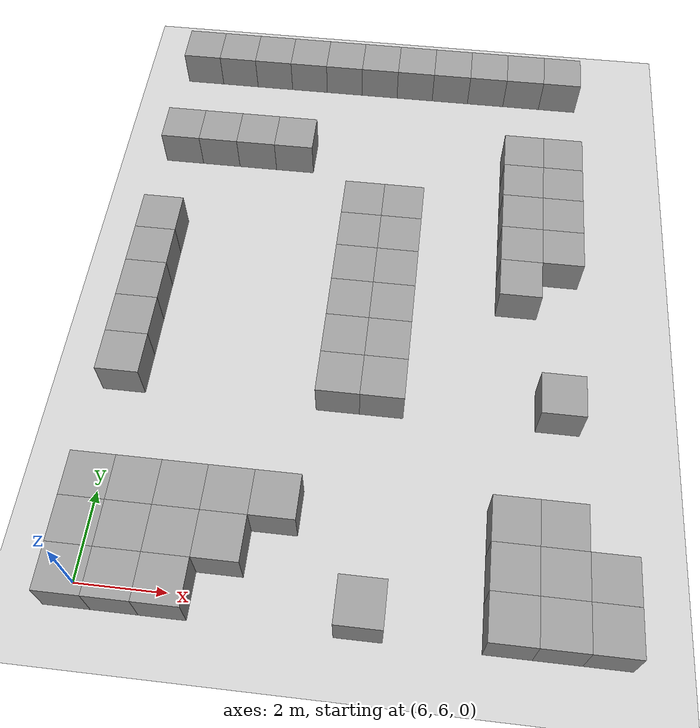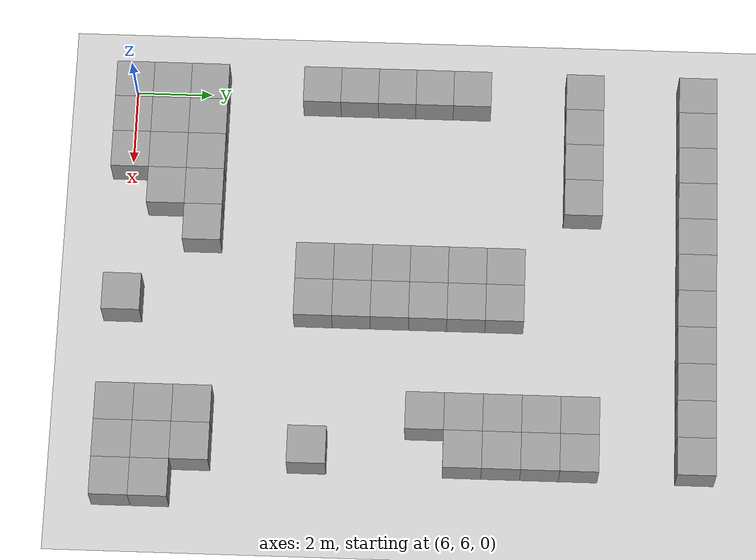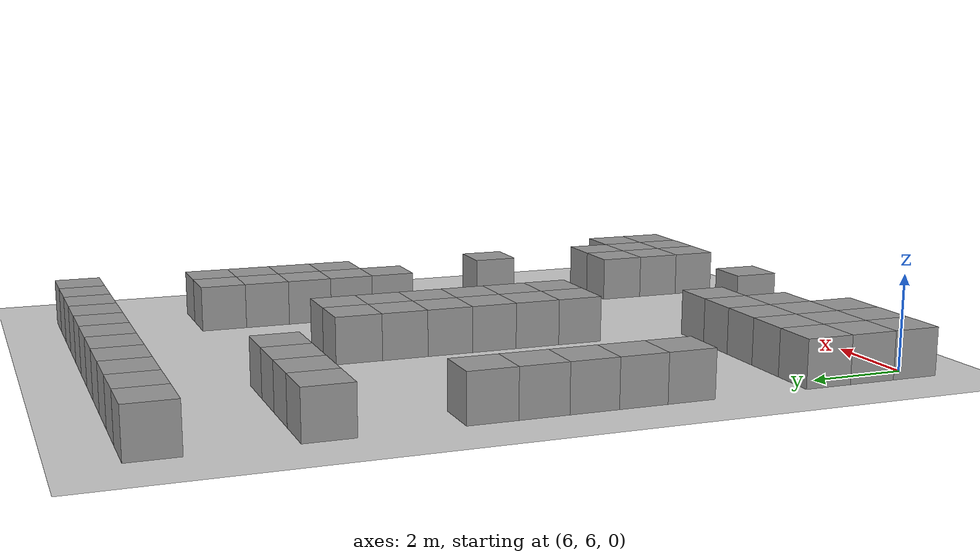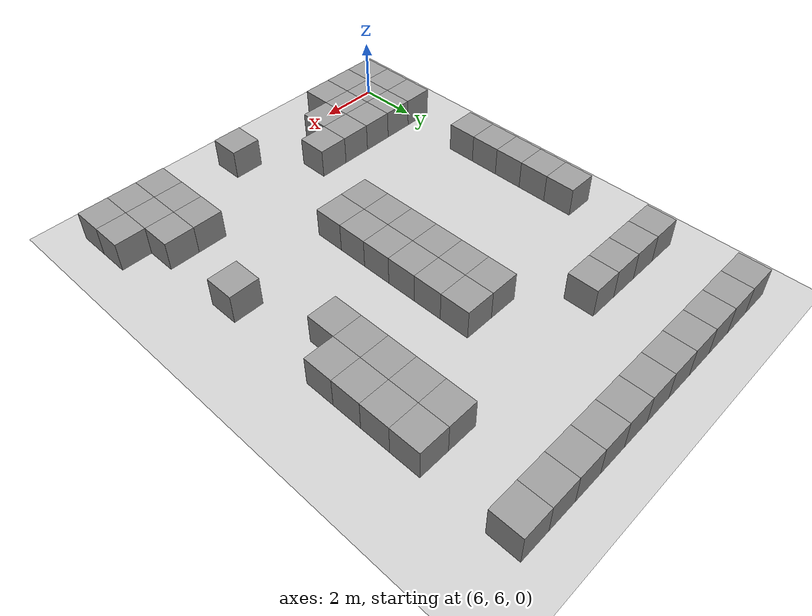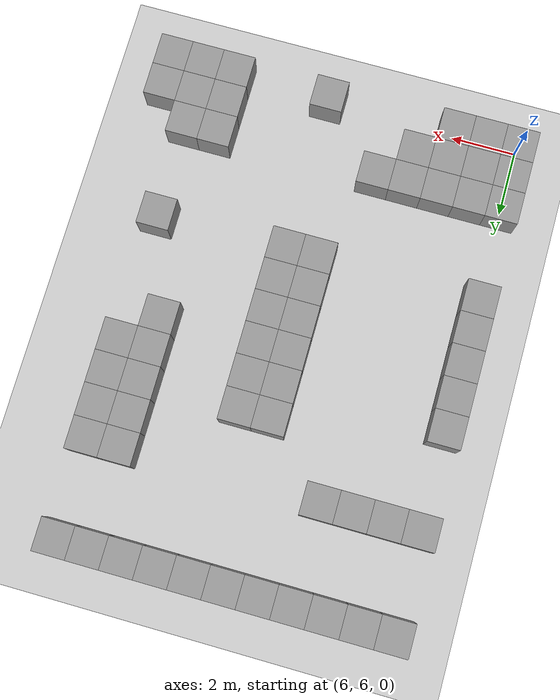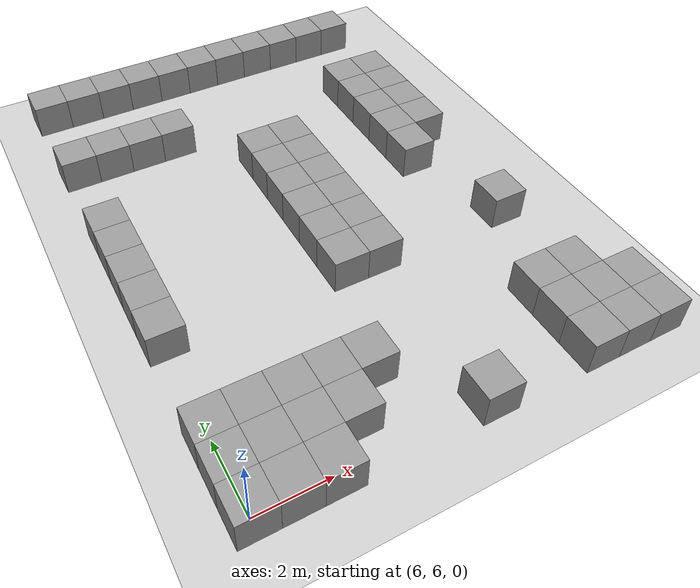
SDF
<sdf version="1.4">
 <world name="default">
  <model name="ground_plane">
   <static>1</static>
   <link name="link">
    <collision name="collision">
     <geometry><plane><normal>0 0 1</normal><size>100 100</size></plane></geometry>
     <surface><friction><ode><mu>100</mu><mu2>50</mu2></ode></friction></surface>
    </collision>
    <visual name="visual">
     <cast_shadows>0</cast_shadows>
     <geometry><plane><normal>0 0 1</normal><size>100 100</size></plane></geometry>
     <material>
      <script><uri>file://media/materials/scripts/gazebo.material</uri><name>Gazebo/Grey</name></script>
     </material>
    </visual>
    <velocity_decay><linear>0</linear><angular>0</angular></velocity_decay>
   </link>
  </model>
  <model name="unit_box_109">
   <pose>6 20.9999 0.5 0 -0 3e-06</pose>
   <static>1</static>
   <link name="link">
    <inertial>
     <mass>1</mass>
     <inertia><ixx>1</ixx><ixy>0</ixy><ixz>0</ixz><iyy>1</iyy><iyz>0</iyz><izz>1</izz></inertia>
    </inertial>
    <collision name="collision"><geometry><box><size>1 1 1</size></box></geometry></collision>
    <visual name="visual">
     <geometry><box><size>1 1 1</size></box></geometry>
     <material>
      <script><uri>file://media/materials/scripts/gazebo.material</uri><name>Gazebo/Grey</name></script>
     </material>
    </visual>
    <velocity_decay><linear>0</linear><angular>0</angular></velocity_decay>
   </link>
   <static>1</static>
  </model>
  <model name="unit_box_110">
   <pose>7 21 0.5 0 -0 4e-06</pose>
   <static>1</static>
   <link name="link">
    <inertial>
     <mass>1</mass>
     <inertia><ixx>1</ixx><ixy>0</ixy><ixz>0</ixz><iyy>1</iyy><iyz>0</iyz><izz>1</izz></inertia>
    </inertial>
    <collision name="collision"><geometry><box><size>1 1 1</size></box></geometry></collision>
    <visual name="visual">
     <geometry><box><size>1 1 1</size></box></geometry>
     <material>
      <script><uri>file://media/materials/scripts/gazebo.material</uri><name>Gazebo/Grey</name></script>
     </material>
    </visual>
    <velocity_decay><linear>0</linear><angular>0</angular></velocity_decay>
   </link>
   <static>1</static>
  </model>
  <model name="unit_box_111">
   <pose>8 21 0.5 0 -0 3e-06</pose>
   <static>1</static>
   <link name="link">
    <inertial>
     <mass>1</mass>
     <inertia><ixx>1</ixx><ixy>0</ixy><ixz>0</ixz><iyy>1</iyy><iyz>0</iyz><izz>1</izz></inertia>
    </inertial>
    <collision name="collision"><geometry><box><size>1 1 1</size></box></geometry></collision>
    <visual name="visual">
     <geometry><box><size>1 1 1</size></box></geometry>
     <material>
      <script><uri>file://media/materials/scripts/gazebo.material</uri><name>Gazebo/Grey</name></script>
     </material>
    </visual>
    <velocity_decay><linear>0</linear><angular>0</angular></velocity_decay>
   </link>
   <static>1</static>
  </model>
  <model name="unit_box_112">
   <pose>9 21 0.5 0 -0 3e-06</pose>
   <static>1</static>
   <link name="link">
    <inertial>
     <mass>1</mass>
     <inertia><ixx>1</ixx><ixy>0</ixy><ixz>0</ixz><iyy>1</iyy><iyz>0</iyz><izz>1</izz></inertia>
    </inertial>
    <collision name="collision"><geometry><box><size>1 1 1</size></box></geometry></collision>
    <visual name="visual">
     <geometry><box><size>1 1 1</size></box></geometry>
     <material>
      <script><uri>file://media/materials/scripts/gazebo.material</uri><name>Gazebo/Grey</name></script>
     </material>
    </visual>
    <velocity_decay><linear>0</linear><angular>0</angular></velocity_decay>
   </link>
   <static>1</static>
  </model>
  <model name="unit_box_113">
   <pose>10 21 0.5 0 -0 1e-06</pose>
   <static>1</static>
   <link name="link">
    <inertial>
     <mass>1</mass>
     <inertia><ixx>1</ixx><ixy>0</ixy><ixz>0</ixz><iyy>1</iyy><iyz>0</iyz><izz>1</izz></inertia>
    </inertial>
    <collision name="collision"><geometry><box><size>1 1 1</size></box></geometry></collision>
    <visual name="visual">
     <geometry><box><size>1 1 1</size></box></geometry>
     <material>
      <script><uri>file://media/materials/scripts/gazebo.material</uri><name>Gazebo/Grey</name></script>
     </material>
    </visual>
    <velocity_decay><linear>0</linear><angular>0</angular></velocity_decay>
   </link>
   <static>1</static>
  </model>
  <model name="unit_box_114">
   <pose>11 21 0.5 0 -0 1e-06</pose>
   <static>1</static>
   <link name="link">
    <inertial>
     <mass>1</mass>
     <inertia><ixx>1</ixx><ixy>0</ixy><ixz>0</ixz><iyy>1</iyy><iyz>0</iyz><izz>1</izz></inertia>
    </inertial>
    <collision name="collision"><geometry><box><size>1 1 1</size></box></geometry></collision>
    <visual name="visual">
     <geometry><box><size>1 1 1</size></box></geometry>
     <material>
      <script><uri>file://media/materials/scripts/gazebo.material</uri><name>Gazebo/Grey</name></script>
     </material>
    </visual>
    <velocity_decay><linear>0</linear><angular>0</angular></velocity_decay>
   </link>
   <static>1</static>
  </model>
  <model name="unit_box_115">
   <pose>12 21 0.5 0 0 -2e-06</pose>
   <static>1</static>
   <link name="link">
    <inertial>
     <mass>1</mass>
     <inertia><ixx>1</ixx><ixy>0</ixy><ixz>0</ixz><iyy>1</iyy><iyz>0</iyz><izz>1</izz></inertia>
    </inertial>
    <collision name="collision"><geometry><box><size>1 1 1</size></box></geometry></collision>
    <visual name="visual">
     <geometry><box><size>1 1 1</size></box></geometry>
     <material>
      <script><uri>file://media/materials/scripts/gazebo.material</uri><name>Gazebo/Grey</name></script>
     </material>
    </visual>
    <velocity_decay><linear>0</linear><angular>0</angular></velocity_decay>
   </link>
   <static>1</static>
  </model>
  <model name="unit_box_116">
   <pose>13 21 0.5 0 0 -2e-06</pose>
   <static>1</static>
   <link name="link">
    <inertial>
     <mass>1</mass>
     <inertia><ixx>1</ixx><ixy>0</ixy><ixz>0</ixz><iyy>1</iyy><iyz>0</iyz><izz>1</izz></inertia>
    </inertial>
    <collision name="collision"><geometry><box><size>1 1 1</size></box></geometry></collision>
    <visual name="visual">
     <geometry><box><size>1 1 1</size></box></geometry>
     <material>
      <script><uri>file://media/materials/scripts/gazebo.material</uri><name>Gazebo/Grey</name></script>
     </material>
    </visual>
    <velocity_decay><linear>0</linear><angular>0</angular></velocity_decay>
   </link>
   <static>1</static>
  </model>
  <model name="unit_box_121">
   <pose>14 21 0.5 0 0 -2e-06</pose>
   <static>1</static>
   <link name="link">
    <inertial>
     <mass>1</mass>
     <inertia><ixx>1</ixx><ixy>0</ixy><ixz>0</ixz><iyy>1</iyy><iyz>0</iyz><izz>1</izz></inertia>
    </inertial>
    <collision name="collision"><geometry><box><size>1 1 1</size></box></geometry></collision>
    <visual name="visual">
     <geometry><box><size>1 1 1</size></box></geometry>
     <material>
      <script><uri>file://media/materials/scripts/gazebo.material</uri><name>Gazebo/Grey</name></script>
     </material>
    </visual>
    <velocity_decay><linear>0</linear><angular>0</angular></velocity_decay>
   </link>
   <static>1</static>
  </model>
  <model name="unit_box_134">
   <pose>15 21 0.5 0 -0 1e-06</pose>
   <static>1</static>
   <link name="link">
    <inertial>
     <mass>1</mass>
     <inertia><ixx>1</ixx><ixy>0</ixy><ixz>0</ixz><iyy>1</iyy><iyz>0</iyz><izz>1</izz></inertia>
    </inertial>
    <collision name="collision"><geometry><box><size>1 1 1</size></box></geometry></collision>
    <visual name="visual">
     <geometry><box><size>1 1 1</size></box></geometry>
     <material>
      <script><uri>file://media/materials/scripts/gazebo.material</uri><name>Gazebo/Grey</name></script>
     </material>
    </visual>
    <velocity_decay><linear>0</linear><angular>0</angular></velocity_decay>
   </link>
   <static>1</static>
  </model>
  <model name="unit_box_135">
   <pose>16 21 0.5 0 -0 1e-06</pose>
   <static>1</static>
   <link name="link">
    <inertial>
     <mass>1</mass>
     <inertia><ixx>1</ixx><ixy>0</ixy><ixz>0</ixz><iyy>1</iyy><iyz>0</iyz><izz>1</izz></inertia>
    </inertial>
    <collision name="collision"><geometry><box><size>1 1 1</size></box></geometry></collision>
    <visual name="visual">
     <geometry><box><size>1 1 1</size></box></geometry>
     <material>
      <script><uri>file://media/materials/scripts/gazebo.material</uri><name>Gazebo/Grey</name></script>
     </material>
    </visual>
    <velocity_decay><linear>0</linear><angular>0</angular></velocity_decay>
   </link>
   <static>1</static>
  </model>
  <model name="unit_box_217_0">
   <pose>8.00001 6.00001 0.5 0 -0 6e-06</pose>
   <link name="link">
    <inertial>
     <mass>1</mass>
     <inertia><ixx>1</ixx><ixy>0</ixy><ixz>0</ixz><iyy>1</iyy><iyz>0</iyz><izz>1</izz></inertia>
    </inertial>
    <collision name="collision"><geometry><box><size>1 1 1</size></box></geometry></collision>
    <visual name="visual">
     <geometry><box><size>1 1 1</size></box></geometry>
     <material>
      <script><uri>file://media/materials/scripts/gazebo.material</uri><name>Gazebo/Grey</name></script>
     </material>
    </visual>
    <velocity_decay><linear>0</linear><angular>0</angular></velocity_decay>
   </link>
   <static>1</static>
  </model>
  <model name="unit_box_218_0">
   <pose>7 6 0.5 0 -0 3e-06</pose>
   <link name="link">
    <inertial>
     <mass>1</mass>
     <inertia><ixx>1</ixx><ixy>0</ixy><ixz>0</ixz><iyy>1</iyy><iyz>0</iyz><izz>1</izz></inertia>
    </inertial>
    <collision name="collision"><geometry><box><size>1 1 1</size></box></geometry></collision>
    <visual name="visual">
     <geometry><box><size>1 1 1</size></box></geometry>
     <material>
      <script><uri>file://media/materials/scripts/gazebo.material</uri><name>Gazebo/Grey</name></script>
     </material>
    </visual>
    <velocity_decay><linear>0</linear><angular>0</angular></velocity_decay>
   </link>
   <static>1</static>
  </model>
  <model name="unit_box_219_0">
   <pose>6 6 0.5 0 -0 1e-06</pose>
   <link name="link">
    <inertial>
     <mass>1</mass>
     <inertia><ixx>1</ixx><ixy>0</ixy><ixz>0</ixz><iyy>1</iyy><iyz>0</iyz><izz>1</izz></inertia>
    </inertial>
    <collision name="collision"><geometry><box><size>1 1 1</size></box></geometry></collision>
    <visual name="visual">
     <geometry><box><size>1 1 1</size></box></geometry>
     <material>
      <script><uri>file://media/materials/scripts/gazebo.material</uri><name>Gazebo/Grey</name></script>
     </material>
    </visual>
    <velocity_decay><linear>0</linear><angular>0</angular></velocity_decay>
   </link>
   <static>1</static>
  </model>
  <model name="unit_box_222_0">
   <pose>6 7 0.5 0 -0 1e-06</pose>
   <link name="link">
    <inertial>
     <mass>1</mass>
     <inertia><ixx>1</ixx><ixy>0</ixy><ixz>0</ixz><iyy>1</iyy><iyz>0</iyz><izz>1</izz></inertia>
    </inertial>
    <collision name="collision"><geometry><box><size>1 1 1</size></box></geometry></collision>
    <visual name="visual">
     <geometry><box><size>1 1 1</size></box></geometry>
     <material>
      <script><uri>file://media/materials/scripts/gazebo.material</uri><name>Gazebo/Grey</name></script>
     </material>
    </visual>
    <velocity_decay><linear>0</linear><angular>0</angular></velocity_decay>
   </link>
   <static>1</static>
  </model>
  <model name="unit_box_223_0">
   <pose>7 7 0.5 0 -0 2e-06</pose>
   <link name="link">
    <inertial>
     <mass>1</mass>
     <inertia><ixx>1</ixx><ixy>0</ixy><ixz>0</ixz><iyy>1</iyy><iyz>0</iyz><izz>1</izz></inertia>
    </inertial>
    <collision name="collision"><geometry><box><size>1 1 1</size></box></geometry></collision>
    <visual name="visual">
     <geometry><box><size>1 1 1</size></box></geometry>
     <material>
      <script><uri>file://media/materials/scripts/gazebo.material</uri><name>Gazebo/Grey</name></script>
     </material>
    </visual>
    <velocity_decay><linear>0</linear><angular>0</angular></velocity_decay>
   </link>
   <static>1</static>
  </model>
  <model name="unit_box_224_0">
   <pose>8 7.00001 0.5 0 -0 2e-06</pose>
   <link name="link">
    <inertial>
     <mass>1</mass>
     <inertia><ixx>1</ixx><ixy>0</ixy><ixz>0</ixz><iyy>1</iyy><iyz>0</iyz><izz>1</izz></inertia>
    </inertial>
    <collision name="collision"><geometry><box><size>1 1 1</size></box></geometry></collision>
    <visual name="visual">
     <geometry><box><size>1 1 1</size></box></geometry>
     <material>
      <script><uri>file://media/materials/scripts/gazebo.material</uri><name>Gazebo/Grey</name></script>
     </material>
    </visual>
    <velocity_decay><linear>0</linear><angular>0</angular></velocity_decay>
   </link>
   <static>1</static>
  </model>
  <model name="unit_box_225_0">
   <pose>9.00001 7 0.5 0 -0 7e-06</pose>
   <link name="link">
    <inertial>
     <mass>1</mass>
     <inertia><ixx>1</ixx><ixy>0</ixy><ixz>0</ixz><iyy>1</iyy><iyz>0</iyz><izz>1</izz></inertia>
    </inertial>
    <collision name="collision"><geometry><box><size>1 1 1</size></box></geometry></collision>
    <visual name="visual">
     <geometry><box><size>1 1 1</size></box></geometry>
     <material>
      <script><uri>file://media/materials/scripts/gazebo.material</uri><name>Gazebo/Grey</name></script>
     </material>
    </visual>
    <velocity_decay><linear>0</linear><angular>0</angular></velocity_decay>
   </link>
   <static>1</static>
  </model>
  <model name="unit_box_228_0">
   <pose>10 8.00001 0.5 0 -0 5e-06</pose>
   <link name="link">
    <inertial>
     <mass>1</mass>
     <inertia><ixx>1</ixx><ixy>0</ixy><ixz>0</ixz><iyy>1</iyy><iyz>0</iyz><izz>1</izz></inertia>
    </inertial>
    <collision name="collision"><geometry><box><size>1 1 1</size></box></geometry></collision>
    <visual name="visual">
     <geometry><box><size>1 1 1</size></box></geometry>
     <material>
      <script><uri>file://media/materials/scripts/gazebo.material</uri><name>Gazebo/Grey</name></script>
     </material>
    </visual>
    <velocity_decay><linear>0</linear><angular>0</angular></velocity_decay>
   </link>
   <static>1</static>
  </model>
  <model name="unit_box_229_0">
   <pose>9 8 0.5 0 -0 5e-06</pose>
   <link name="link">
    <inertial>
     <mass>1</mass>
     <inertia><ixx>1</ixx><ixy>0</ixy><ixz>0</ixz><iyy>1</iyy><iyz>0</iyz><izz>1</izz></inertia>
    </inertial>
    <collision name="collision"><geometry><box><size>1 1 1</size></box></geometry></collision>
    <visual name="visual">
     <geometry><box><size>1 1 1</size></box></geometry>
     <material>
      <script><uri>file://media/materials/scripts/gazebo.material</uri><name>Gazebo/Grey</name></script>
     </material>
    </visual>
    <velocity_decay><linear>0</linear><angular>0</angular></velocity_decay>
   </link>
   <static>1</static>
  </model>
  <model name="unit_box_230_0">
   <pose>8 8.00001 0.5 0 -0 5e-06</pose>
   <link name="link">
    <inertial>
     <mass>1</mass>
     <inertia><ixx>1</ixx><ixy>0</ixy><ixz>0</ixz><iyy>1</iyy><iyz>0</iyz><izz>1</izz></inertia>
    </inertial>
    <collision name="collision"><geometry><box><size>1 1 1</size></box></geometry></collision>
    <visual name="visual">
     <geometry><box><size>1 1 1</size></box></geometry>
     <material>
      <script><uri>file://media/materials/scripts/gazebo.material</uri><name>Gazebo/Grey</name></script>
     </material>
    </visual>
    <velocity_decay><linear>0</linear><angular>0</angular></velocity_decay>
   </link>
   <static>1</static>
  </model>
  <model name="unit_box_231_0">
   <pose>7 8.00001 0.5 0 -0 5e-06</pose>
   <link name="link">
    <inertial>
     <mass>1</mass>
     <inertia><ixx>1</ixx><ixy>0</ixy><ixz>0</ixz><iyy>1</iyy><iyz>0</iyz><izz>1</izz></inertia>
    </inertial>
    <collision name="collision"><geometry><box><size>1 1 1</size></box></geometry></collision>
    <visual name="visual">
     <geometry><box><size>1 1 1</size></box></geometry>
     <material>
      <script><uri>file://media/materials/scripts/gazebo.material</uri><name>Gazebo/Grey</name></script>
     </material>
    </visual>
    <velocity_decay><linear>0</linear><angular>0</angular></velocity_decay>
   </link>
   <static>1</static>
  </model>
  <model name="unit_box_232_0">
   <pose>6 8.00001 0.5 0 -0 2e-06</pose>
   <link name="link">
    <inertial>
     <mass>1</mass>
     <inertia><ixx>1</ixx><ixy>0</ixy><ixz>0</ixz><iyy>1</iyy><iyz>0</iyz><izz>1</izz></inertia>
    </inertial>
    <collision name="collision"><geometry><box><size>1 1 1</size></box></geometry></collision>
    <visual name="visual">
     <geometry><box><size>1 1 1</size></box></geometry>
     <material>
      <script><uri>file://media/materials/scripts/gazebo.material</uri><name>Gazebo/Grey</name></script>
     </material>
    </visual>
    <velocity_decay><linear>0</linear><angular>0</angular></velocity_decay>
   </link>
   <static>1</static>
  </model>
  <model name="unit_box_236_0">
   <pose>12 6 0.5 0 -0 1e-06</pose>
   <link name="link">
    <inertial>
     <mass>1</mass>
     <inertia><ixx>1</ixx><ixy>0</ixy><ixz>0</ixz><iyy>1</iyy><iyz>0</iyz><izz>1</izz></inertia>
    </inertial>
    <collision name="collision"><geometry><box><size>1 1 1</size></box></geometry></collision>
    <visual name="visual">
     <geometry><box><size>1 1 1</size></box></geometry>
     <material>
      <script><uri>file://media/materials/scripts/gazebo.material</uri><name>Gazebo/Grey</name></script>
     </material>
    </visual>
    <velocity_decay><linear>0</linear><angular>0</angular></velocity_decay>
   </link>
   <static>1</static>
  </model>
  <model name="unit_box_290">
   <pose>15 6 0.5 0 0 -4e-06</pose>
   <link name="link">
    <inertial>
     <mass>1</mass>
     <inertia><ixx>1</ixx><ixy>0</ixy><ixz>0</ixz><iyy>1</iyy><iyz>0</iyz><izz>1</izz></inertia>
    </inertial>
    <collision name="collision"><geometry><box><size>1 1 1</size></box></geometry></collision>
    <visual name="visual">
     <geometry><box><size>1 1 1</size></box></geometry>
     <material>
      <script><uri>file://media/materials/scripts/gazebo.material</uri><name>Gazebo/Grey</name></script>
     </material>
    </visual>
    <velocity_decay><linear>0</linear><angular>0</angular></velocity_decay>
   </link>
   <static>1</static>
  </model>
  <model name="unit_box_291">
   <pose>15 7 0.5 0 0 -4e-06</pose>
   <link name="link">
    <inertial>
     <mass>1</mass>
     <inertia><ixx>1</ixx><ixy>0</ixy><ixz>0</ixz><iyy>1</iyy><iyz>0</iyz><izz>1</izz></inertia>
    </inertial>
    <collision name="collision"><geometry><box><size>1 1 1</size></box></geometry></collision>
    <visual name="visual">
     <geometry><box><size>1 1 1</size></box></geometry>
     <material>
      <script><uri>file://media/materials/scripts/gazebo.material</uri><name>Gazebo/Grey</name></script>
     </material>
    </visual>
    <velocity_decay><linear>0</linear><angular>0</angular></velocity_decay>
   </link>
   <static>1</static>
  </model>
  <model name="unit_box_292">
   <pose>15 8 0.5 0 0 -4e-06</pose>
   <link name="link">
    <inertial>
     <mass>1</mass>
     <inertia><ixx>1</ixx><ixy>0</ixy><ixz>0</ixz><iyy>1</iyy><iyz>0</iyz><izz>1</izz></inertia>
    </inertial>
    <collision name="collision"><geometry><box><size>1 1 1</size></box></geometry></collision>
    <visual name="visual">
     <geometry><box><size>1 1 1</size></box></geometry>
     <material>
      <script><uri>file://media/materials/scripts/gazebo.material</uri><name>Gazebo/Grey</name></script>
     </material>
    </visual>
    <velocity_decay><linear>0</linear><angular>0</angular></velocity_decay>
   </link>
   <static>1</static>
  </model>
  <model name="unit_box_307">
   <pose>17 6.00002 0.5 0 0 -2e-06</pose>
   <link name="link">
    <inertial>
     <mass>1</mass>
     <inertia><ixx>1</ixx><ixy>0</ixy><ixz>0</ixz><iyy>1</iyy><iyz>0</iyz><izz>1</izz></inertia>
    </inertial>
    <collision name="collision"><geometry><box><size>1 1 1</size></box></geometry></collision>
    <visual name="visual">
     <geometry><box><size>1 1 1</size></box></geometry>
     <material>
      <script><uri>file://media/materials/scripts/gazebo.material</uri><name>Gazebo/Grey</name></script>
     </material>
    </visual>
    <velocity_decay><linear>0</linear><angular>0</angular></velocity_decay>
   </link>
   <static>1</static>
  </model>
  <model name="unit_box_308">
   <pose>16 5.99999 0.5 0 0 -4e-06</pose>
   <link name="link">
    <inertial>
     <mass>1</mass>
     <inertia><ixx>1</ixx><ixy>0</ixy><ixz>0</ixz><iyy>1</iyy><iyz>0</iyz><izz>1</izz></inertia>
    </inertial>
    <collision name="collision"><geometry><box><size>1 1 1</size></box></geometry></collision>
    <visual name="visual">
     <geometry><box><size>1 1 1</size></box></geometry>
     <material>
      <script><uri>file://media/materials/scripts/gazebo.material</uri><name>Gazebo/Grey</name></script>
     </material>
    </visual>
    <velocity_decay><linear>0</linear><angular>0</angular></velocity_decay>
   </link>
   <static>1</static>
  </model>
  <model name="unit_box_309">
   <pose>16 7 0.5 0 0 -5e-06</pose>
   <link name="link">
    <inertial>
     <mass>1</mass>
     <inertia><ixx>1</ixx><ixy>0</ixy><ixz>0</ixz><iyy>1</iyy><iyz>0</iyz><izz>1</izz></inertia>
    </inertial>
    <collision name="collision"><geometry><box><size>1 1 1</size></box></geometry></collision>
    <visual name="visual">
     <geometry><box><size>1 1 1</size></box></geometry>
     <material>
      <script><uri>file://media/materials/scripts/gazebo.material</uri><name>Gazebo/Grey</name></script>
     </material>
    </visual>
    <velocity_decay><linear>0</linear><angular>0</angular></velocity_decay>
   </link>
   <static>1</static>
  </model>
  <model name="unit_box_310">
   <pose>16 8 0.5 0 0 -5e-06</pose>
   <link name="link">
    <inertial>
     <mass>1</mass>
     <inertia><ixx>1</ixx><ixy>0</ixy><ixz>0</ixz><iyy>1</iyy><iyz>0</iyz><izz>1</izz></inertia>
    </inertial>
    <collision name="collision"><geometry><box><size>1 1 1</size></box></geometry></collision>
    <visual name="visual">
     <geometry><box><size>1 1 1</size></box></geometry>
     <material>
      <script><uri>file://media/materials/scripts/gazebo.material</uri><name>Gazebo/Grey</name></script>
     </material>
    </visual>
    <velocity_decay><linear>0</linear><angular>0</angular></velocity_decay>
   </link>
   <static>1</static>
  </model>
  <model name="unit_box_319">
   <pose>6 11 0.5 0 -0 5e-06</pose>
   <link name="link">
    <inertial>
     <mass>1</mass>
     <inertia><ixx>1</ixx><ixy>0</ixy><ixz>0</ixz><iyy>1</iyy><iyz>0</iyz><izz>1</izz></inertia>
    </inertial>
    <collision name="collision"><geometry><box><size>1 1 1</size></box></geometry></collision>
    <visual name="visual">
     <geometry><box><size>1 1 1</size></box></geometry>
     <material>
      <script><uri>file://media/materials/scripts/gazebo.material</uri><name>Gazebo/Grey</name></script>
     </material>
    </visual>
    <velocity_decay><linear>0</linear><angular>0</angular></velocity_decay>
   </link>
   <static>1</static>
  </model>
  <model name="unit_box_320">
   <pose>6 12 0.5 0 -0 5e-06</pose>
   <link name="link">
    <inertial>
     <mass>1</mass>
     <inertia><ixx>1</ixx><ixy>0</ixy><ixz>0</ixz><iyy>1</iyy><iyz>0</iyz><izz>1</izz></inertia>
    </inertial>
    <collision name="collision"><geometry><box><size>1 1 1</size></box></geometry></collision>
    <visual name="visual">
     <geometry><box><size>1 1 1</size></box></geometry>
     <material>
      <script><uri>file://media/materials/scripts/gazebo.material</uri><name>Gazebo/Grey</name></script>
     </material>
    </visual>
    <velocity_decay><linear>0</linear><angular>0</angular></velocity_decay>
   </link>
   <static>1</static>
  </model>
  <model name="unit_box_321">
   <pose>6 13 0.5 0 -0 2e-06</pose>
   <link name="link">
    <inertial>
     <mass>1</mass>
     <inertia><ixx>1</ixx><ixy>0</ixy><ixz>0</ixz><iyy>1</iyy><iyz>0</iyz><izz>1</izz></inertia>
    </inertial>
    <collision name="collision"><geometry><box><size>1 1 1</size></box></geometry></collision>
    <visual name="visual">
     <geometry><box><size>1 1 1</size></box></geometry>
     <material>
      <script><uri>file://media/materials/scripts/gazebo.material</uri><name>Gazebo/Grey</name></script>
     </material>
    </visual>
    <velocity_decay><linear>0</linear><angular>0</angular></velocity_decay>
   </link>
   <static>1</static>
  </model>
  <model name="unit_box_322">
   <pose>6.00001 14 0.5 0 -0 3e-06</pose>
   <link name="link">
    <inertial>
     <mass>1</mass>
     <inertia><ixx>1</ixx><ixy>0</ixy><ixz>0</ixz><iyy>1</iyy><iyz>0</iyz><izz>1</izz></inertia>
    </inertial>
    <collision name="collision"><geometry><box><size>1 1 1</size></box></geometry></collision>
    <visual name="visual">
     <geometry><box><size>1 1 1</size></box></geometry>
     <material>
      <script><uri>file://media/materials/scripts/gazebo.material</uri><name>Gazebo/Grey</name></script>
     </material>
    </visual>
    <velocity_decay><linear>0</linear><angular>0</angular></velocity_decay>
   </link>
   <static>1</static>
  </model>
  <model name="unit_box_328">
   <pose>6 15 0.5 0 -0 3e-06</pose>
   <link name="link">
    <inertial>
     <mass>1</mass>
     <inertia><ixx>1</ixx><ixy>0</ixy><ixz>0</ixz><iyy>1</iyy><iyz>0</iyz><izz>1</izz></inertia>
    </inertial>
    <collision name="collision"><geometry><box><size>1 1 1</size></box></geometry></collision>
    <visual name="visual">
     <geometry><box><size>1 1 1</size></box></geometry>
     <material>
      <script><uri>file://media/materials/scripts/gazebo.material</uri><name>Gazebo/Grey</name></script>
     </material>
    </visual>
    <velocity_decay><linear>0</linear><angular>0</angular></velocity_decay>
   </link>
   <static>1</static>
  </model>
  <model name="unit_box_330">
   <pose>6 17.9999 0.5 0 0 -1e-06</pose>
   <link name="link">
    <inertial>
     <mass>1</mass>
     <inertia><ixx>1</ixx><ixy>0</ixy><ixz>0</ixz><iyy>1</iyy><iyz>0</iyz><izz>1</izz></inertia>
    </inertial>
    <collision name="collision"><geometry><box><size>1 1 1</size></box></geometry></collision>
    <visual name="visual">
     <geometry><box><size>1 1 1</size></box></geometry>
     <material>
      <script><uri>file://media/materials/scripts/gazebo.material</uri><name>Gazebo/Grey</name></script>
     </material>
    </visual>
    <velocity_decay><linear>0</linear><angular>0</angular></velocity_decay>
   </link>
   <static>1</static>
  </model>
  <model name="unit_box_331">
   <pose>7 18 0.5 0 -0 0</pose>
   <link name="link">
    <inertial>
     <mass>1</mass>
     <inertia><ixx>1</ixx><ixy>0</ixy><ixz>0</ixz><iyy>1</iyy><iyz>0</iyz><izz>1</izz></inertia>
    </inertial>
    <collision name="collision"><geometry><box><size>1 1 1</size></box></geometry></collision>
    <visual name="visual">
     <geometry><box><size>1 1 1</size></box></geometry>
     <material>
      <script><uri>file://media/materials/scripts/gazebo.material</uri><name>Gazebo/Grey</name></script>
     </material>
    </visual>
    <velocity_decay><linear>0</linear><angular>0</angular></velocity_decay>
   </link>
   <static>1</static>
  </model>
  <model name="unit_box_332">
   <pose>8 18 0.5 0 0 -4e-06</pose>
   <link name="link">
    <inertial>
     <mass>1</mass>
     <inertia><ixx>1</ixx><ixy>0</ixy><ixz>0</ixz><iyy>1</iyy><iyz>0</iyz><izz>1</izz></inertia>
    </inertial>
    <collision name="collision"><geometry><box><size>1 1 1</size></box></geometry></collision>
    <visual name="visual">
     <geometry><box><size>1 1 1</size></box></geometry>
     <material>
      <script><uri>file://media/materials/scripts/gazebo.material</uri><name>Gazebo/Grey</name></script>
     </material>
    </visual>
    <velocity_decay><linear>0</linear><angular>0</angular></velocity_decay>
   </link>
   <static>1</static>
  </model>
  <model name="unit_box_333">
   <pose>9.00001 18 0.5 0 -0 1e-06</pose>
   <link name="link">
    <inertial>
     <mass>1</mass>
     <inertia><ixx>1</ixx><ixy>0</ixy><ixz>0</ixz><iyy>1</iyy><iyz>0</iyz><izz>1</izz></inertia>
    </inertial>
    <collision name="collision"><geometry><box><size>1 1 1</size></box></geometry></collision>
    <visual name="visual">
     <geometry><box><size>1 1 1</size></box></geometry>
     <material>
      <script><uri>file://media/materials/scripts/gazebo.material</uri><name>Gazebo/Grey</name></script>
     </material>
    </visual>
    <velocity_decay><linear>0</linear><angular>0</angular></velocity_decay>
   </link>
   <static>1</static>
  </model>
  <model name="unit_box_337">
   <pose>11 16 0.5 0 0 -1e-06</pose>
   <link name="link">
    <inertial>
     <mass>1</mass>
     <inertia><ixx>1</ixx><ixy>0</ixy><ixz>0</ixz><iyy>1</iyy><iyz>0</iyz><izz>1</izz></inertia>
    </inertial>
    <collision name="collision"><geometry><box><size>1 1 1</size></box></geometry></collision>
    <visual name="visual">
     <geometry><box><size>1 1 1</size></box></geometry>
     <material>
      <script><uri>file://media/materials/scripts/gazebo.material</uri><name>Gazebo/Grey</name></script>
     </material>
    </visual>
    <velocity_decay><linear>0</linear><angular>0</angular></velocity_decay>
   </link>
   <static>1</static>
  </model>
  <model name="unit_box_338">
   <pose>11 15 0.5 0 0 -2e-06</pose>
   <link name="link">
    <inertial>
     <mass>1</mass>
     <inertia><ixx>1</ixx><ixy>0</ixy><ixz>0</ixz><iyy>1</iyy><iyz>0</iyz><izz>1</izz></inertia>
    </inertial>
    <collision name="collision"><geometry><box><size>1 1 1</size></box></geometry></collision>
    <visual name="visual">
     <geometry><box><size>1 1 1</size></box></geometry>
     <material>
      <script><uri>file://media/materials/scripts/gazebo.material</uri><name>Gazebo/Grey</name></script>
     </material>
    </visual>
    <velocity_decay><linear>0</linear><angular>0</angular></velocity_decay>
   </link>
   <static>1</static>
  </model>
  <model name="unit_box_339">
   <pose>11 14 0.5 0 0 -2e-06</pose>
   <link name="link">
    <inertial>
     <mass>1</mass>
     <inertia><ixx>1</ixx><ixy>0</ixy><ixz>0</ixz><iyy>1</iyy><iyz>0</iyz><izz>1</izz></inertia>
    </inertial>
    <collision name="collision"><geometry><box><size>1 1 1</size></box></geometry></collision>
    <visual name="visual">
     <geometry><box><size>1 1 1</size></box></geometry>
     <material>
      <script><uri>file://media/materials/scripts/gazebo.material</uri><name>Gazebo/Grey</name></script>
     </material>
    </visual>
    <velocity_decay><linear>0</linear><angular>0</angular></velocity_decay>
   </link>
   <static>1</static>
  </model>
  <model name="unit_box_340">
   <pose>11 13 0.5 0 -0 0</pose>
   <link name="link">
    <inertial>
     <mass>1</mass>
     <inertia><ixx>1</ixx><ixy>0</ixy><ixz>0</ixz><iyy>1</iyy><iyz>0</iyz><izz>1</izz></inertia>
    </inertial>
    <collision name="collision"><geometry><box><size>1 1 1</size></box></geometry></collision>
    <visual name="visual">
     <geometry><box><size>1 1 1</size></box></geometry>
     <material>
      <script><uri>file://media/materials/scripts/gazebo.material</uri><name>Gazebo/Grey</name></script>
     </material>
    </visual>
    <velocity_decay><linear>0</linear><angular>0</angular></velocity_decay>
   </link>
   <static>1</static>
  </model>
  <model name="unit_box_341">
   <pose>11 12 0.5 0 0 -1e-06</pose>
   <link name="link">
    <inertial>
     <mass>1</mass>
     <inertia><ixx>1</ixx><ixy>0</ixy><ixz>0</ixz><iyy>1</iyy><iyz>0</iyz><izz>1</izz></inertia>
    </inertial>
    <collision name="collision"><geometry><box><size>1 1 1</size></box></geometry></collision>
    <visual name="visual">
     <geometry><box><size>1 1 1</size></box></geometry>
     <material>
      <script><uri>file://media/materials/scripts/gazebo.material</uri><name>Gazebo/Grey</name></script>
     </material>
    </visual>
    <velocity_decay><linear>0</linear><angular>0</angular></velocity_decay>
   </link>
   <static>1</static>
  </model>
  <model name="unit_box_342">
   <pose>11 11 0.5 0 -0 0</pose>
   <link name="link">
    <inertial>
     <mass>1</mass>
     <inertia><ixx>1</ixx><ixy>0</ixy><ixz>0</ixz><iyy>1</iyy><iyz>0</iyz><izz>1</izz></inertia>
    </inertial>
    <collision name="collision"><geometry><box><size>1 1 1</size></box></geometry></collision>
    <visual name="visual">
     <geometry><box><size>1 1 1</size></box></geometry>
     <material>
      <script><uri>file://media/materials/scripts/gazebo.material</uri><name>Gazebo/Grey</name></script>
     </material>
    </visual>
    <velocity_decay><linear>0</linear><angular>0</angular></velocity_decay>
   </link>
   <static>1</static>
  </model>
  <model name="unit_box_343">
   <pose>12 11 0.5 0 -0 0</pose>
   <link name="link">
    <inertial>
     <mass>1</mass>
     <inertia><ixx>1</ixx><ixy>0</ixy><ixz>0</ixz><iyy>1</iyy><iyz>0</iyz><izz>1</izz></inertia>
    </inertial>
    <collision name="collision"><geometry><box><size>1 1 1</size></box></geometry></collision>
    <visual name="visual">
     <geometry><box><size>1 1 1</size></box></geometry>
     <material>
      <script><uri>file://media/materials/scripts/gazebo.material</uri><name>Gazebo/Grey</name></script>
     </material>
    </visual>
    <velocity_decay><linear>0</linear><angular>0</angular></velocity_decay>
   </link>
   <static>1</static>
  </model>
  <model name="unit_box_344">
   <pose>12 12 0.5 0 -0 0</pose>
   <link name="link">
    <inertial>
     <mass>1</mass>
     <inertia><ixx>1</ixx><ixy>0</ixy><ixz>0</ixz><iyy>1</iyy><iyz>0</iyz><izz>1</izz></inertia>
    </inertial>
    <collision name="collision"><geometry><box><size>1 1 1</size></box></geometry></collision>
    <visual name="visual">
     <geometry><box><size>1 1 1</size></box></geometry>
     <material>
      <script><uri>file://media/materials/scripts/gazebo.material</uri><name>Gazebo/Grey</name></script>
     </material>
    </visual>
    <velocity_decay><linear>0</linear><angular>0</angular></velocity_decay>
   </link>
   <static>1</static>
  </model>
  <model name="unit_box_345">
   <pose>12 13 0.5 0 -0 0</pose>
   <link name="link">
    <inertial>
     <mass>1</mass>
     <inertia><ixx>1</ixx><ixy>0</ixy><ixz>0</ixz><iyy>1</iyy><iyz>0</iyz><izz>1</izz></inertia>
    </inertial>
    <collision name="collision"><geometry><box><size>1 1 1</size></box></geometry></collision>
    <visual name="visual">
     <geometry><box><size>1 1 1</size></box></geometry>
     <material>
      <script><uri>file://media/materials/scripts/gazebo.material</uri><name>Gazebo/Grey</name></script>
     </material>
    </visual>
    <velocity_decay><linear>0</linear><angular>0</angular></velocity_decay>
   </link>
   <static>1</static>
  </model>
  <model name="unit_box_346">
   <pose>12 14 0.5 0 -0 0</pose>
   <link name="link">
    <inertial>
     <mass>1</mass>
     <inertia><ixx>1</ixx><ixy>0</ixy><ixz>0</ixz><iyy>1</iyy><iyz>0</iyz><izz>1</izz></inertia>
    </inertial>
    <collision name="collision"><geometry><box><size>1 1 1</size></box></geometry></collision>
    <visual name="visual">
     <geometry><box><size>1 1 1</size></box></geometry>
     <material>
      <script><uri>file://media/materials/scripts/gazebo.material</uri><name>Gazebo/Grey</name></script>
     </material>
    </visual>
    <velocity_decay><linear>0</linear><angular>0</angular></velocity_decay>
   </link>
   <static>1</static>
  </model>
  <model name="unit_box_347">
   <pose>12 15 0.5 0 -0 0</pose>
   <link name="link">
    <inertial>
     <mass>1</mass>
     <inertia><ixx>1</ixx><ixy>0</ixy><ixz>0</ixz><iyy>1</iyy><iyz>0</iyz><izz>1</izz></inertia>
    </inertial>
    <collision name="collision"><geometry><box><size>1 1 1</size></box></geometry></collision>
    <visual name="visual">
     <geometry><box><size>1 1 1</size></box></geometry>
     <material>
      <script><uri>file://media/materials/scripts/gazebo.material</uri><name>Gazebo/Grey</name></script>
     </material>
    </visual>
    <velocity_decay><linear>0</linear><angular>0</angular></velocity_decay>
   </link>
   <static>1</static>
  </model>
  <model name="unit_box_348">
   <pose>12 16 0.5 0 -0 0</pose>
   <link name="link">
    <inertial>
     <mass>1</mass>
     <inertia><ixx>1</ixx><ixy>0</ixy><ixz>0</ixz><iyy>1</iyy><iyz>0</iyz><izz>1</izz></inertia>
    </inertial>
    <collision name="collision"><geometry><box><size>1 1 1</size></box></geometry></collision>
    <visual name="visual">
     <geometry><box><size>1 1 1</size></box></geometry>
     <material>
      <script><uri>file://media/materials/scripts/gazebo.material</uri><name>Gazebo/Grey</name></script>
     </material>
    </visual>
    <velocity_decay><linear>0</linear><angular>0</angular></velocity_decay>
   </link>
   <static>1</static>
  </model>
  <model name="unit_box_368">
   <pose>15 18 0.5 0 -0 1e-06</pose>
   <link name="link">
    <inertial>
     <mass>1</mass>
     <inertia><ixx>1</ixx><ixy>0</ixy><ixz>0</ixz><iyy>1</iyy><iyz>0</iyz><izz>1</izz></inertia>
    </inertial>
    <collision name="collision"><geometry><box><size>1 1 1</size></box></geometry></collision>
    <visual name="visual">
     <geometry><box><size>1 1 1</size></box></geometry>
     <material>
      <script><uri>file://media/materials/scripts/gazebo.material</uri><name>Gazebo/Grey</name></script>
     </material>
    </visual>
    <velocity_decay><linear>0</linear><angular>0</angular></velocity_decay>
   </link>
   <static>1</static>
  </model>
  <model name="unit_box_369">
   <pose>15 17 0.5 0 0 -1e-06</pose>
   <link name="link">
    <inertial>
     <mass>1</mass>
     <inertia><ixx>1</ixx><ixy>0</ixy><ixz>0</ixz><iyy>1</iyy><iyz>0</iyz><izz>1</izz></inertia>
    </inertial>
    <collision name="collision"><geometry><box><size>1 1 1</size></box></geometry></collision>
    <visual name="visual">
     <geometry><box><size>1 1 1</size></box></geometry>
     <material>
      <script><uri>file://media/materials/scripts/gazebo.material</uri><name>Gazebo/Grey</name></script>
     </material>
    </visual>
    <velocity_decay><linear>0</linear><angular>0</angular></velocity_decay>
   </link>
   <static>1</static>
  </model>
  <model name="unit_box_370">
   <pose>15 16 0.5 0 0 -1e-06</pose>
   <link name="link">
    <inertial>
     <mass>1</mass>
     <inertia><ixx>1</ixx><ixy>0</ixy><ixz>0</ixz><iyy>1</iyy><iyz>0</iyz><izz>1</izz></inertia>
    </inertial>
    <collision name="collision"><geometry><box><size>1 1 1</size></box></geometry></collision>
    <visual name="visual">
     <geometry><box><size>1 1 1</size></box></geometry>
     <material>
      <script><uri>file://media/materials/scripts/gazebo.material</uri><name>Gazebo/Grey</name></script>
     </material>
    </visual>
    <velocity_decay><linear>0</linear><angular>0</angular></velocity_decay>
   </link>
   <static>1</static>
  </model>
  <model name="unit_box_371">
   <pose>15 15 0.5 0 0 -2e-06</pose>
   <link name="link">
    <inertial>
     <mass>1</mass>
     <inertia><ixx>1</ixx><ixy>0</ixy><ixz>0</ixz><iyy>1</iyy><iyz>0</iyz><izz>1</izz></inertia>
    </inertial>
    <collision name="collision"><geometry><box><size>1 1 1</size></box></geometry></collision>
    <visual name="visual">
     <geometry><box><size>1 1 1</size></box></geometry>
     <material>
      <script><uri>file://media/materials/scripts/gazebo.material</uri><name>Gazebo/Grey</name></script>
     </material>
    </visual>
    <velocity_decay><linear>0</linear><angular>0</angular></velocity_decay>
   </link>
   <static>1</static>
  </model>
  <model name="unit_box_372">
   <pose>15 14 0.5 0 0 -3e-06</pose>
   <link name="link">
    <inertial>
     <mass>1</mass>
     <inertia><ixx>1</ixx><ixy>0</ixy><ixz>0</ixz><iyy>1</iyy><iyz>0</iyz><izz>1</izz></inertia>
    </inertial>
    <collision name="collision"><geometry><box><size>1 1 1</size></box></geometry></collision>
    <visual name="visual">
     <geometry><box><size>1 1 1</size></box></geometry>
     <material>
      <script><uri>file://media/materials/scripts/gazebo.material</uri><name>Gazebo/Grey</name></script>
     </material>
    </visual>
    <velocity_decay><linear>0</linear><angular>0</angular></velocity_decay>
   </link>
   <static>1</static>
  </model>
  <model name="unit_box_373">
   <pose>16 15 0.5 0 0 -1e-06</pose>
   <link name="link">
    <inertial>
     <mass>1</mass>
     <inertia><ixx>1</ixx><ixy>0</ixy><ixz>0</ixz><iyy>1</iyy><iyz>0</iyz><izz>1</izz></inertia>
    </inertial>
    <collision name="collision"><geometry><box><size>1 1 1</size></box></geometry></collision>
    <visual name="visual">
     <geometry><box><size>1 1 1</size></box></geometry>
     <material>
      <script><uri>file://media/materials/scripts/gazebo.material</uri><name>Gazebo/Grey</name></script>
     </material>
    </visual>
    <velocity_decay><linear>0</linear><angular>0</angular></velocity_decay>
   </link>
   <static>1</static>
  </model>
  <model name="unit_box_374">
   <pose>16 16 0.5 0 0 -1e-06</pose>
   <link name="link">
    <inertial>
     <mass>1</mass>
     <inertia><ixx>1</ixx><ixy>0</ixy><ixz>0</ixz><iyy>1</iyy><iyz>0</iyz><izz>1</izz></inertia>
    </inertial>
    <collision name="collision"><geometry><box><size>1 1 1</size></box></geometry></collision>
    <visual name="visual">
     <geometry><box><size>1 1 1</size></box></geometry>
     <material>
      <script><uri>file://media/materials/scripts/gazebo.material</uri><name>Gazebo/Grey</name></script>
     </material>
    </visual>
    <velocity_decay><linear>0</linear><angular>0</angular></velocity_decay>
   </link>
   <static>1</static>
  </model>
  <model name="unit_box_376">
   <pose>16 17 0.5 0 -0 0</pose>
   <link name="link">
    <inertial>
     <mass>1</mass>
     <inertia><ixx>1</ixx><ixy>0</ixy><ixz>0</ixz><iyy>1</iyy><iyz>0</iyz><izz>1</izz></inertia>
    </inertial>
    <collision name="collision"><geometry><box><size>1 1 1</size></box></geometry></collision>
    <visual name="visual">
     <geometry><box><size>1 1 1</size></box></geometry>
     <material>
      <script><uri>file://media/materials/scripts/gazebo.material</uri><name>Gazebo/Grey</name></script>
     </material>
    </visual>
    <velocity_decay><linear>0</linear><angular>0</angular></velocity_decay>
   </link>
   <static>1</static>
  </model>
  <model name="unit_box_377">
   <pose>16 18 0.5 0 -0 1e-06</pose>
   <link name="link">
    <inertial>
     <mass>1</mass>
     <inertia><ixx>1</ixx><ixy>0</ixy><ixz>0</ixz><iyy>1</iyy><iyz>0</iyz><izz>1</izz></inertia>
    </inertial>
    <collision name="collision"><geometry><box><size>1 1 1</size></box></geometry></collision>
    <visual name="visual">
     <geometry><box><size>1 1 1</size></box></geometry>
     <material>
      <script><uri>file://media/materials/scripts/gazebo.material</uri><name>Gazebo/Grey</name></script>
     </material>
    </visual>
    <velocity_decay><linear>0</linear><angular>0</angular></velocity_decay>
   </link>
   <static>1</static>
  </model>
  <model name="unit_box_404">
   <pose>16 11 0.5 0 -0 0</pose>
   <link name="link">
    <inertial>
     <mass>1</mass>
     <inertia><ixx>1</ixx><ixy>0</ixy><ixz>0</ixz><iyy>1</iyy><iyz>0</iyz><izz>1</izz></inertia>
    </inertial>
    <collision name="collision"><geometry><box><size>1 1 1</size></box></geometry></collision>
    <visual name="visual">
     <geometry><box><size>1 1 1</size></box></geometry>
     <material>
      <script><uri>file://media/materials/scripts/gazebo.material</uri><name>Gazebo/Grey</name></script>
     </material>
    </visual>
    <velocity_decay><linear>0</linear><angular>0</angular></velocity_decay>
   </link>
   <static>1</static>
  </model>
  <model name="unit_box_8">
   <pose>17 7.00011 0.5 0 0 -3e-06</pose>
   <link name="link">
    <inertial>
     <mass>1</mass>
     <inertia><ixx>1</ixx><ixy>0</ixy><ixz>0</ixz><iyy>1</iyy><iyz>0</iyz><izz>1</izz></inertia>
    </inertial>
    <collision name="collision"><geometry><box><size>1 1 1</size></box></geometry></collision>
    <visual name="visual">
     <geometry><box><size>1 1 1</size></box></geometry>
     <material>
      <script><uri>file://media/materials/scripts/gazebo.material</uri><name>Gazebo/Grey</name></script>
     </material>
    </visual>
    <velocity_decay><linear>0</linear><angular>0</angular></velocity_decay>
   </link>
   <static>1</static>
  </model>
 </world>
</sdf>
